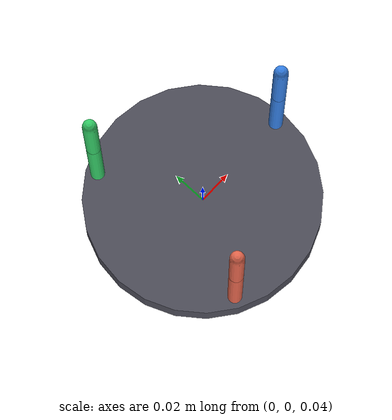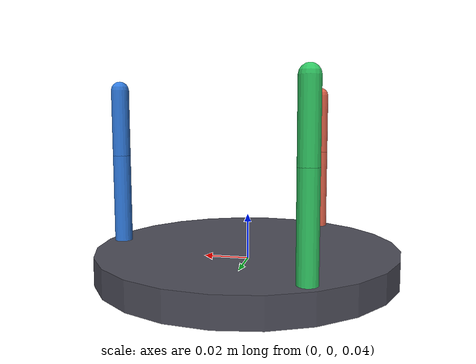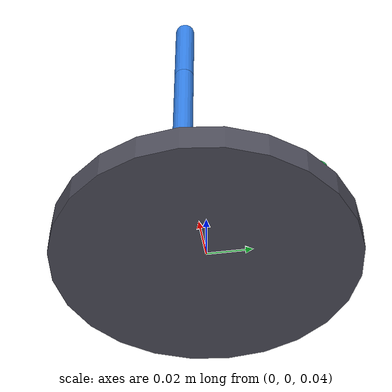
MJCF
<mujoco model="three_finger_learning_hand">
  <compiler angle="radian"/>
  <option timestep=".001" gravity="0 0 0" integrator="implicitfast" iterations="100" tolerance="1e-12"/>
  <default>
    <joint type="hinge" axis="0 1 0" limited="true" damping=".002" armature=".00002"
           solreflimit=".005 1" solimplimit=".99 .99 .001"/>
    <geom type="capsule" size=".004" friction=".7 .005 .0001" solref=".01 1" solimp=".95 .95 .001"/>
    <position kp=".25" kv=".02" gear="1" ctrllimited="true" forcelimited="true" forcerange="-.08 .08"/>
  </default>
  <worldbody>
    <!-- No joint/freejoint: palm is fixed to world. No object or floor. -->
    <body name="palm" pos="0 0 .04">
      <geom name="palm_geom" type="cylinder" size=".067 .006" rgba=".3 .3 .35 1"/>
      <body name="f0_proximal" pos=".06 0 .006" quat="0 0 0 1">
        <joint name="f0_prox" range="0 .9"/>
        <geom name="f0_prox_geom" fromto="0 0 0 0 0 .04" mass=".03" rgba=".2 .5 .9 1"/>
        <body name="f0_distal" pos="0 0 .04">
          <joint name="f0_dist" range="0 1.2"/>
          <geom name="f0_dist_geom" fromto="0 0 0 0 0 .03" mass=".02" rgba=".2 .5 .9 1"/>
          <site name="f0_tip" pos="0 0 .03" size=".003" rgba="1 .8 .1 1"/>
        </body>
      </body>
      <body name="f1_proximal" pos="-.03 .05196152422706632 .006" quat=".8660254037844386 0 0 -.5">
        <joint name="f1_prox" range="0 .9"/>
        <geom name="f1_prox_geom" fromto="0 0 0 0 0 .04" mass=".03" rgba=".2 .8 .4 1"/>
        <body name="f1_distal" pos="0 0 .04">
          <joint name="f1_dist" range="0 1.2"/>
          <geom name="f1_dist_geom" fromto="0 0 0 0 0 .03" mass=".02" rgba=".2 .8 .4 1"/>
          <site name="f1_tip" pos="0 0 .03" size=".003" rgba="1 .8 .1 1"/>
        </body>
      </body>
      <body name="f2_proximal" pos="-.03 -.05196152422706632 .006" quat=".8660254037844386 0 0 .5">
        <joint name="f2_prox" range="0 .9"/>
        <geom name="f2_prox_geom" fromto="0 0 0 0 0 .04" mass=".03" rgba=".9 .4 .3 1"/>
        <body name="f2_distal" pos="0 0 .04">
          <joint name="f2_dist" range="0 1.2"/>
          <geom name="f2_dist_geom" fromto="0 0 0 0 0 .03" mass=".02" rgba=".9 .4 .3 1"/>
          <site name="f2_tip" pos="0 0 .03" size=".003" rgba="1 .8 .1 1"/>
        </body>
      </body>
    </body>
  </worldbody>
  <contact>
    <!-- Capsule ends overlap their mounting joints; do not treat this as collision. -->
    <exclude body1="palm" body2="f0_proximal"/>
    <exclude body1="palm" body2="f1_proximal"/>
    <exclude body1="palm" body2="f2_proximal"/>
  </contact>
  <actuator>
    <!-- Deliberate order mismatch: actuator id is not joint/qpos/dof index. -->
    <position name="f2_dist_servo" joint="f2_dist" ctrlrange="0 1.2"/>
    <position name="f0_prox_servo" joint="f0_prox" ctrlrange="0 .9"/>
    <position name="f1_dist_servo" joint="f1_dist" ctrlrange="0 1.2"/>
    <position name="f2_prox_servo" joint="f2_prox" ctrlrange="0 .9"/>
    <position name="f0_dist_servo" joint="f0_dist" ctrlrange="0 1.2"/>
    <position name="f1_prox_servo" joint="f1_prox" ctrlrange="0 .9"/>
  </actuator>
</mujoco>
